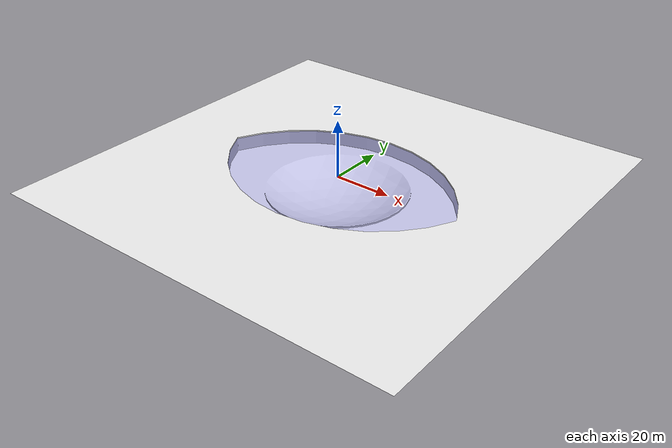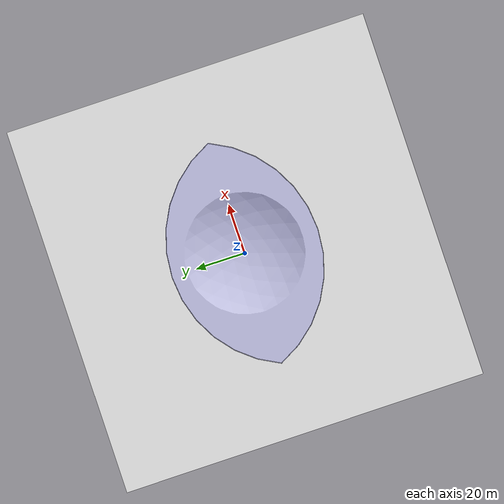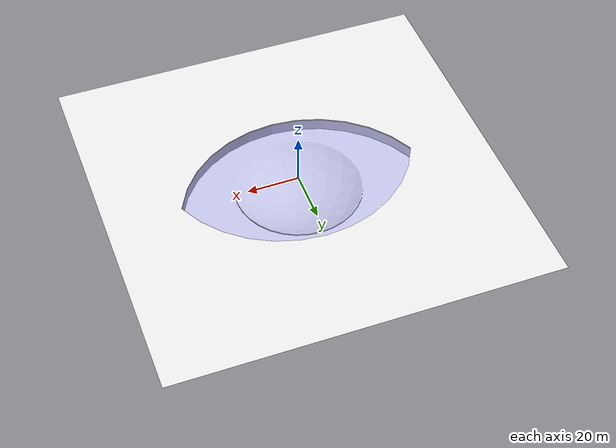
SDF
<?xml version="1.0"?>
<sdf version="1.5">
  <world name="default">

    <!-- Physics configured for 100 iterations / simulated second, 1/10 default for faster speed -->
    <physics type="ode">
      <!-- Iterations per real world second, target rtf / max_step_time -->
      <!-- rtf / step -->
      <real_time_update_rate>100</real_time_update_rate>
      <!-- Time to step simulation forward each iteration -->
      <max_step_size>0.01</max_step_size>
    </physics>

    <!-- Estimated latitude/longitude of gainesville -->
    <spherical_coordinates>
      <surface_model>EARTH_WGS84</surface_model>
      <world_frame_orientation>ENU</world_frame_orientation>
      <latitude_deg>29.6474</latitude_deg>
      <longitude_deg>277.65027</longitude_deg>
      <elevation>0.4</elevation>
      <!-- For legacy gazebo reasons, need to rotate -->
      <heading_deg>180</heading_deg>
    </spherical_coordinates>

    <magnetic_field>8.883535E-06 2.214733E-05 -3.157464E-05</magnetic_field>

    <light name="illum" type="directional">
      <pose>-4 18 9 0 -.75 0</pose>
      <diffuse>0.1 0.4 1 1</diffuse>
      <attenuation><constant>1</constant></attenuation>
    </light>
    <light name="sky_illum" type="directional">
      <pose>0 0 5 3.14 0 0</pose>
      <diffuse>1 1 1 1</diffuse>
      <attenuation><constant>1</constant></attenuation>
    </light>

    <include>
      <uri>model://sun</uri>
    </include>
    <light name='user_point_light_0' type='point'>
      <pose frame=''>0.109933 -0.142384 1 0 -0 0</pose>
      <diffuse>0.5 0.5 0.5 1</diffuse>
      <specular>0.1 0.1 0.1 1</specular>
      <attenuation>
        <range>100</range>
        <constant>0.5</constant>
        <linear>0.01</linear>
        <quadratic>0.001</quadratic>
      </attenuation>
      <cast_shadows>0</cast_shadows>
      <direction>0 0 -1</direction>
    </light>
    <light name='user_point_light_1' type='point'>
      <pose frame=''>-29.7505 -0.454729 1 0 -0 0</pose>
      <diffuse>0.5 0.5 0.5 1</diffuse>
      <specular>0.1 0.1 0.1 1</specular>
      <attenuation>
        <range>100</range>
        <constant>0.5</constant>
        <linear>0.01</linear>
        <quadratic>0.001</quadratic>
      </attenuation>
      <cast_shadows>0</cast_shadows>
      <direction>0 0 -1</direction>
    </light>
    <light name='user_point_light_2' type='point'>
      <pose frame=''>31.6112 -2.69613 1 0 -0 0</pose>
      <diffuse>0.5 0.5 0.5 1</diffuse>
      <specular>0.1 0.1 0.1 1</specular>
      <attenuation>
        <range>100</range>
        <constant>0.5</constant>
        <linear>0.01</linear>
        <quadratic>0.001</quadratic>
      </attenuation>
      <cast_shadows>0</cast_shadows>
      <direction>0 0 -1</direction>
    </light>
    <model name="water">
      <static>true</static>
      <pose>0 0 0 0 3.1415 0</pose>
      <link name="link">
        <visual name="visual">
          <transparency>0.8</transparency>
          <cast_shadows>false</cast_shadows>
          <geometry>
            <box>
              <size>92 61 .02</size>
            </box>
          </geometry>
          <material>
            <ambient>0.2 0.2 0.9 1</ambient>
            <diffuse>0.2 0.2 0.9 1</diffuse>
            <specular>0.1 0.1 0.3 1</specular>
            <emissive>0 0 0 1</emissive>
          </material>
        </visual>
      </link>
    </model>

    <!-- Not sure how to get correct scaling here with Blender. Things are pretty much correct though.
         Best option would be to remake transdec model in Solidworks with proper measurements. -->
    <model name="transdec">
      <pose>0 0 .5  0 0 0</pose>
      <static>true</static>
      <link name="ground">
        <visual name="visual">
          <geometry>
            <mesh>
              <uri>file://transdec/transdec.dae</uri>
              <scale>0.5 0.5 0.5</scale>
            </mesh>
          </geometry>
          <material>
            <script>
              <uri>file://media/materials/scripts/gazebo.material</uri>
              <name>Gazebo/White</name>
            </script>
          </material>
        </visual>
        <collision name="collision">
          <geometry>
              <mesh>
                <uri>file://transdec/transdec.dae</uri>
                <scale>0.5 0.5 0.5</scale>
              </mesh>
          </geometry>
        </collision>
      </link>
    </model>

    <include>
      <name>transdec_pinger</name>
      <uri>model://pinger</uri>
      <pose>5 5 -2 0 0 0 </pose>
    </include>

    <scene>
      <sky>
        <clouds>
          <speed>12</speed>
        </clouds>
      </sky>
    </scene>
  </world>
</sdf>

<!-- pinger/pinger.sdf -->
<sdf version="1.5">
  <model name="pinger">
    <static>true</static>
    <link name="pinger_body">
      <visual name="bodyvisual">
        <geometry>
          <sphere><radius>.05</radius></sphere>
        </geometry>
        <material>
          <ambient>1 1 1 1</ambient>
          <diffuse>1 1 1 1</diffuse>
          <specular>1 1 1 1</specular>
          <emissive>0 0 0 0</emissive>
        </material>
      </visual>
    </link>
  </model>
</sdf>
